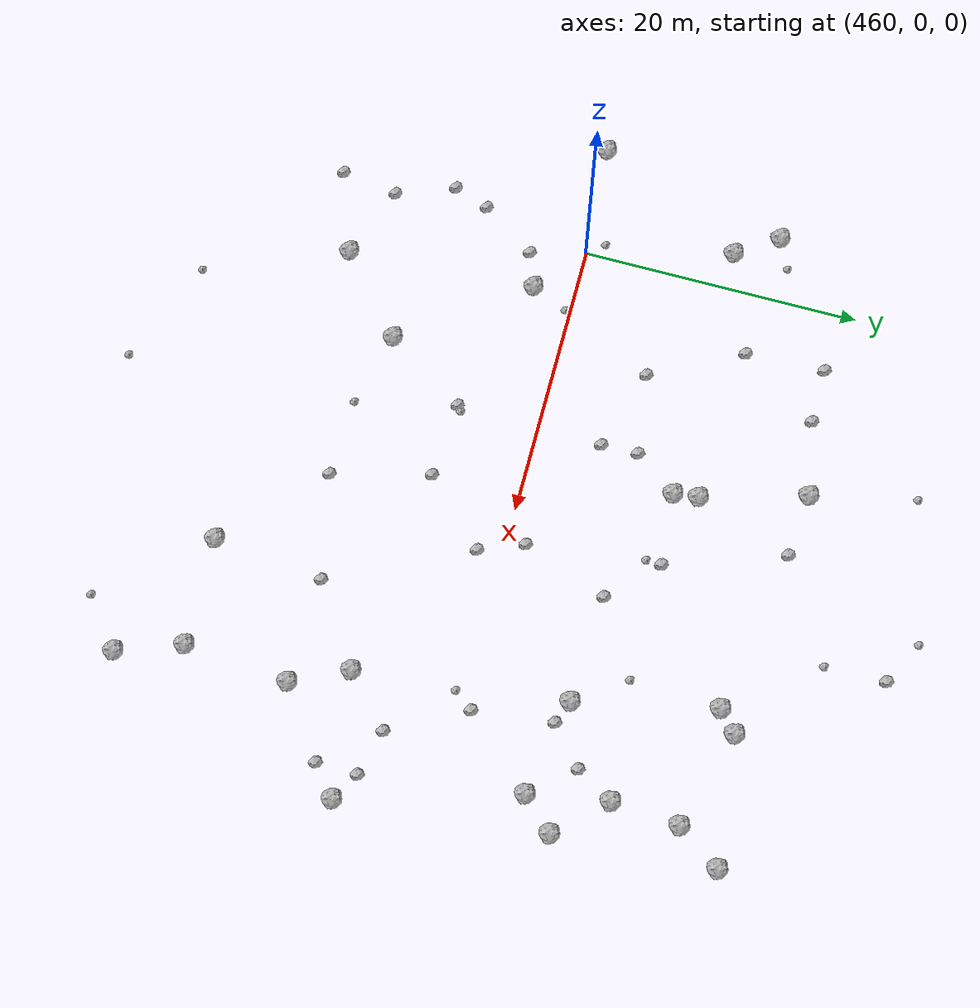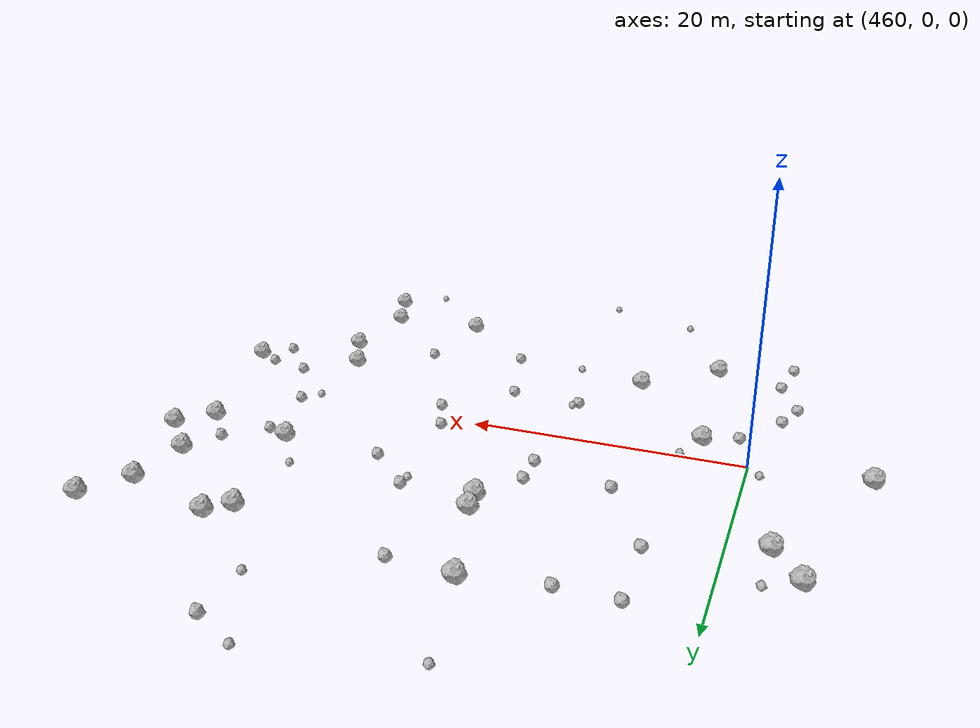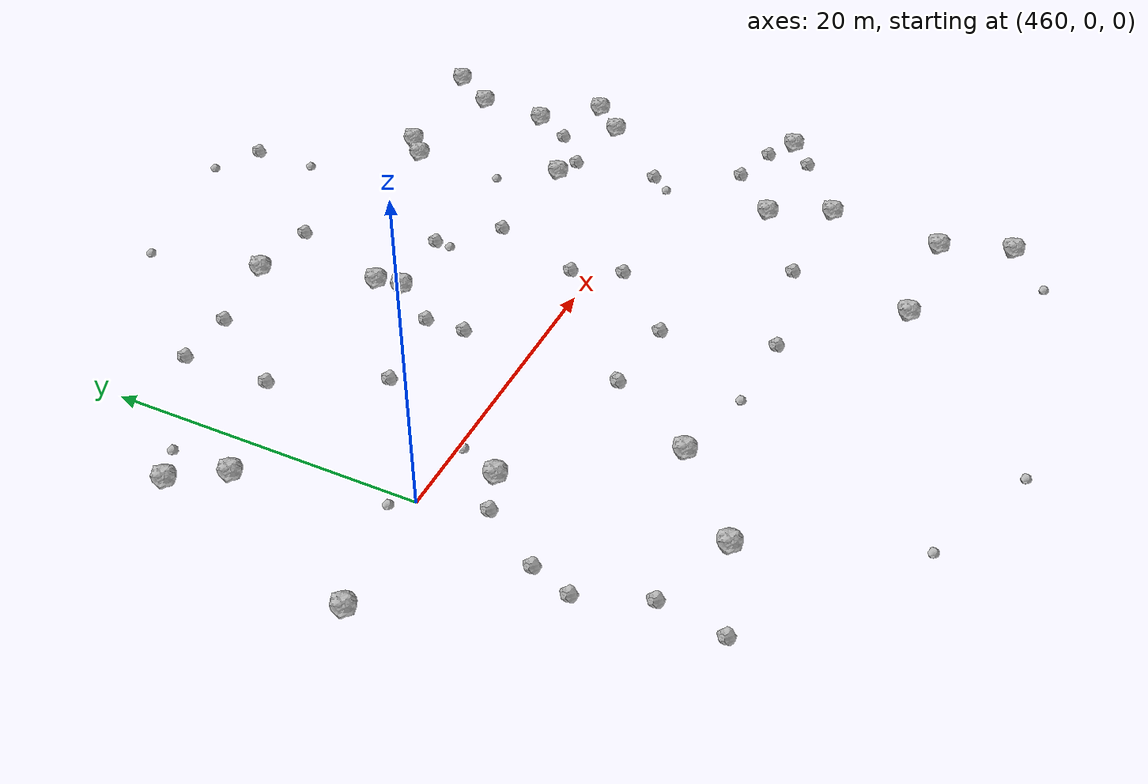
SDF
<sdf version="1.6">
 <world name="default">
  <include><uri>model://sun</uri></include>
  <model name="rock1_12_4">
   <include><uri>model://rock1</uri><pose>451.9181984015001 -0.5132529303445459 0.5 0 0 0</pose></include>
  </model>
  <model name="rock1_12_5">
   <include><uri>model://rock1</uri><pose>502.6922593567911 -6.695578981407447 0.5 0 0 0</pose></include>
  </model>
  <model name="rock1_12_6">
   <include><uri>model://rock1</uri><pose>493.942513156741 -7.887871260007909 0.5 0 0 0</pose></include>
  </model>
  <model name="rock1_12_7">
   <include><uri>model://rock1</uri><pose>490.0251232780399 17.08161959237343 0.5 0 0 0</pose></include>
  </model>
  <model name="rock1_12_8">
   <include><uri>model://rock1</uri><pose>496.8180176992653 -23.98774308435995 0.5 0 0 0</pose></include>
  </model>
  <model name="rock1_12_9">
   <include><uri>model://rock1</uri><pose>499.0291129931741 5.736307834133768 0.5 0 0 0</pose></include>
  </model>
  <model name="rock1_12_10">
   <include><uri>model://rock1</uri><pose>464.41807425422485 -16.575388432508444 0.5 0 0 0</pose></include>
  </model>
  <model name="rock1_12_11">
   <include><uri>model://rock1</uri><pose>455.42951565080153 13.318414054592779 0.5 0 0 0</pose></include>
  </model>
  <model name="rock1_12_12">
   <include><uri>model://rock1</uri><pose>500.54245355029906 19.358887453747826 0.5 0 0 0</pose></include>
  </model>
  <model name="rock1_12_13">
   <include><uri>model://rock1</uri><pose>498.0312590357617 11.401200407294603 0.5 0 0 0</pose></include>
  </model>
  <model name="rock1_12_14">
   <include><uri>model://rock1</uri><pose>487.45355194316517 -19.615669014257744 0.5 0 0 0</pose></include>
  </model>
  <model name="rock1_12_15">
   <include><uri>model://rock1</uri><pose>473.8086325237679 19.57058395468728 0.5 0 0 0</pose></include>
  </model>
  <model name="rock1_12_16">
   <include><uri>model://rock1</uri><pose>491.4707096637266 18.393020948085642 0.5 0 0 0</pose></include>
  </model>
  <model name="rock1_12_17">
   <include><uri>model://rock1</uri><pose>498.41271529441065 16.24870948646963 0.5 0 0 0</pose></include>
  </model>
  <model name="rock1_12_18">
   <include><uri>model://rock1</uri><pose>463.6320686316307 -3.0035518384307665 0.5 0 0 0</pose></include>
  </model>
  <model name="rock1_12_19">
   <include><uri>model://rock1</uri><pose>469.9618108227124 -11.730208095337847 0.5 0 0 0</pose></include>
  </model>
  <model name="rock1_12_20">
   <include><uri>model://rock1</uri><pose>495.8187539857538 -11.871679950430686 0.5 0 0 0</pose></include>
  </model>
  <model name="rock1_12_21">
   <include><uri>model://rock1</uri><pose>501.17061298351933 7.991337409819579 0.5 0 0 0</pose></include>
  </model>
  <model name="rock1_12_22">
   <include><uri>model://rock1</uri><pose>476.12038896260526 10.36921825398769 0.5 0 0 0</pose></include>
  </model>
  <model name="rock1_12_23">
   <include><uri>model://rock1</uri><pose>475.90031462694196 12.136788801224696 0.5 0 0 0</pose></include>
  </model>
  <model name="rock1_12_24">
   <include><uri>model://rock1</uri><pose>495.14830620122723 -19.416785650144515 0.5 0 0 0</pose></include>
  </model>
  <model name="rock1_12_25">
   <include><uri>model://rock1</uri><pose>492.173411459913 7.098286319856939 0.5 0 0 0</pose></include>
  </model>
  <model name="rock1_12_26">
   <include><uri>model://rock1</uri><pose>457.4304932199406 10.325228393881325 0.5 0 0 0</pose></include>
  </model>
  <model name="rock2_12_0">
   <include><uri>model://rock2</uri><pose>483.4860779364044 -1.791160215832857 0.3 0 0 0</pose></include>
  </model>
  <model name="rock2_12_1">
   <include><uri>model://rock2</uri><pose>485.2428494620155 27.63880072010415 0.3 0 0 0</pose></include>
  </model>
  <model name="rock2_12_2">
   <include><uri>model://rock2</uri><pose>481.2131903925533 10.83394865023633 0.3 0 0 0</pose></include>
  </model>
  <model name="rock2_12_3">
   <include><uri>model://rock2</uri><pose>458.46419766282366 -18.700339034372647 0.3 0 0 0</pose></include>
  </model>
  <model name="rock2_12_4">
   <include><uri>model://rock2</uri><pose>479.0517465668165 -6.273791456184739 0.3 0 0 0</pose></include>
  </model>
  <model name="rock2_12_5">
   <include><uri>model://rock2</uri><pose>459.1153104137195 -14.584062857069842 0.3 0 0 0</pose></include>
  </model>
  <model name="rock2_12_6">
   <include><uri>model://rock2</uri><pose>482.2277082773828 1.3701679536666624 0.3 0 0 0</pose></include>
  </model>
  <model name="rock2_12_7">
   <include><uri>model://rock2</uri><pose>468.35674747782315 18.63411332526948 0.3 0 0 0</pose></include>
  </model>
  <model name="rock2_12_8">
   <include><uri>model://rock2</uri><pose>473.8663507744203 4.664440381012348 0.3 0 0 0</pose></include>
  </model>
  <model name="rock2_12_9">
   <include><uri>model://rock2</uri><pose>457.5392188721155 -10.432694469660088 0.3 0 0 0</pose></include>
  </model>
  <model name="rock2_12_10">
   <include><uri>model://rock2</uri><pose>497.3459791841391 -4.621048805325852 0.3 0 0 0</pose></include>
  </model>
  <model name="rock2_12_11">
   <include><uri>model://rock2</uri><pose>496.45579921091735 8.78936692414954 0.3 0 0 0</pose></include>
  </model>
  <model name="rock2_12_12">
   <include><uri>model://rock2</uri><pose>458.45423911751504 -7.8535910572631735 0.3 0 0 0</pose></include>
  </model>
  <model name="rock2_12_13">
   <include><uri>model://rock2</uri><pose>473.62959100561204 -5.899985403047889 0.3 0 0 0</pose></include>
  </model>
  <model name="rock2_12_14">
   <include><uri>model://rock2</uri><pose>467.9928254659342 6.483424465722855 0.3 0 0 0</pose></include>
  </model>
  <model name="rock2_12_15">
   <include><uri>model://rock2</uri><pose>500.5715539760439 -8.445103106927892 0.3 0 0 0</pose></include>
  </model>
  <model name="rock2_12_16">
   <include><uri>model://rock2</uri><pose>500.6452279021131 -5.490679932762401 0.3 0 0 0</pose></include>
  </model>
  <model name="rock2_12_17">
   <include><uri>model://rock2</uri><pose>493.7844775046667 6.4816792983807545 0.3 0 0 0</pose></include>
  </model>
  <model name="rock2_12_18">
   <include><uri>model://rock2</uri><pose>480.83594717438996 -13.247058556564877 0.3 0 0 0</pose></include>
  </model>
  <model name="rock2_12_19">
   <include><uri>model://rock2</uri><pose>488.30161286572195 -11.663214220998487 0.3 0 0 0</pose></include>
  </model>
  <model name="rock2_12_20">
   <include><uri>model://rock2</uri><pose>494.44779629001897 0.7633479154600629 0.3 0 0 0</pose></include>
  </model>
  <model name="rock2_12_21">
   <include><uri>model://rock2</uri><pose>478.2891099756122 19.190463278432233 0.3 0 0 0</pose></include>
  </model>
  <model name="rock2_12_22">
   <include><uri>model://rock2</uri><pose>484.4584481795478 7.534434653945311 0.3 0 0 0</pose></include>
  </model>
  <model name="rock2_12_23">
   <include><uri>model://rock2</uri><pose>464.60167516788687 12.943704573537943 0.3 0 0 0</pose></include>
  </model>
  <model name="rock2_12_24">
   <include><uri>model://rock2</uri><pose>461.0686116070386 -3.922527628114942 0.3 0 0 0</pose></include>
  </model>
  <model name="rock2_12_25">
   <include><uri>model://rock2</uri><pose>473.80921663670944 7.31959161245117 0.3 0 0 0</pose></include>
  </model>
  <model name="rock2_12_26">
   <include><uri>model://rock2</uri><pose>464.4058038643882 18.661338331723606 0.3 0 0 0</pose></include>
  </model>
  <model name="rock3_12_0">
   <include><uri>model://rock3</uri><pose>493.3859917543168 -0.6503637048779893 0.2 0 0 0</pose></include>
  </model>
  <model name="rock3_12_1">
   <include><uri>model://rock3</uri><pose>472.0619061182979 27.05053389846583 0.2 0 0 0</pose></include>
  </model>
  <model name="rock3_12_2">
   <include><uri>model://rock3</uri><pose>474.0075958707681 -5.614294070017966 0.2 0 0 0</pose></include>
  </model>
  <model name="rock3_12_3">
   <include><uri>model://rock3</uri><pose>459.05044209197405 1.193181502191944 0.2 0 0 0</pose></include>
  </model>
  <model name="rock3_12_4">
   <include><uri>model://rock3</uri><pose>468.4228662960449 -26.494132427388976 0.2 0 0 0</pose></include>
  </model>
  <model name="rock3_12_5">
   <include><uri>model://rock3</uri><pose>464.6892935537904 -0.3727720389823226 0.2 0 0 0</pose></include>
  </model>
  <model name="rock3_12_6">
   <include><uri>model://rock3</uri><pose>481.15044580074425 9.68755266640892 0.2 0 0 0</pose></include>
  </model>
  <model name="rock3_12_7">
   <include><uri>model://rock3</uri><pose>493.40606220188187 -26.765427175184115 0.2 0 0 0</pose></include>
  </model>
  <model name="rock3_12_8">
   <include><uri>model://rock3</uri><pose>485.29856408389617 23.263149795316934 0.2 0 0 0</pose></include>
  </model>
  <model name="rock3_12_9">
   <include><uri>model://rock3</uri><pose>475.2500589670262 -13.084932500276427 0.2 0 0 0</pose></include>
  </model>
  <model name="rock3_12_10">
   <include><uri>model://rock3</uri><pose>482.1707954455788 29.22348763856133 0.2 0 0 0</pose></include>
  </model>
  <model name="rock3_12_11">
   <include><uri>model://rock3</uri><pose>476.0006147663987 -29.629616465805764 0.2 0 0 0</pose></include>
  </model>
  <model name="rock3_12_12">
   <include><uri>model://rock3</uri><pose>457.4892968529325 14.36146225433523 0.2 0 0 0</pose></include>
  </model>
  <model name="rock3_12_13">
   <include><uri>model://rock3</uri><pose>489.63614012829225 10.66787821288495 0.2 0 0 0</pose></include>
  </model>
 </world>
</sdf>
